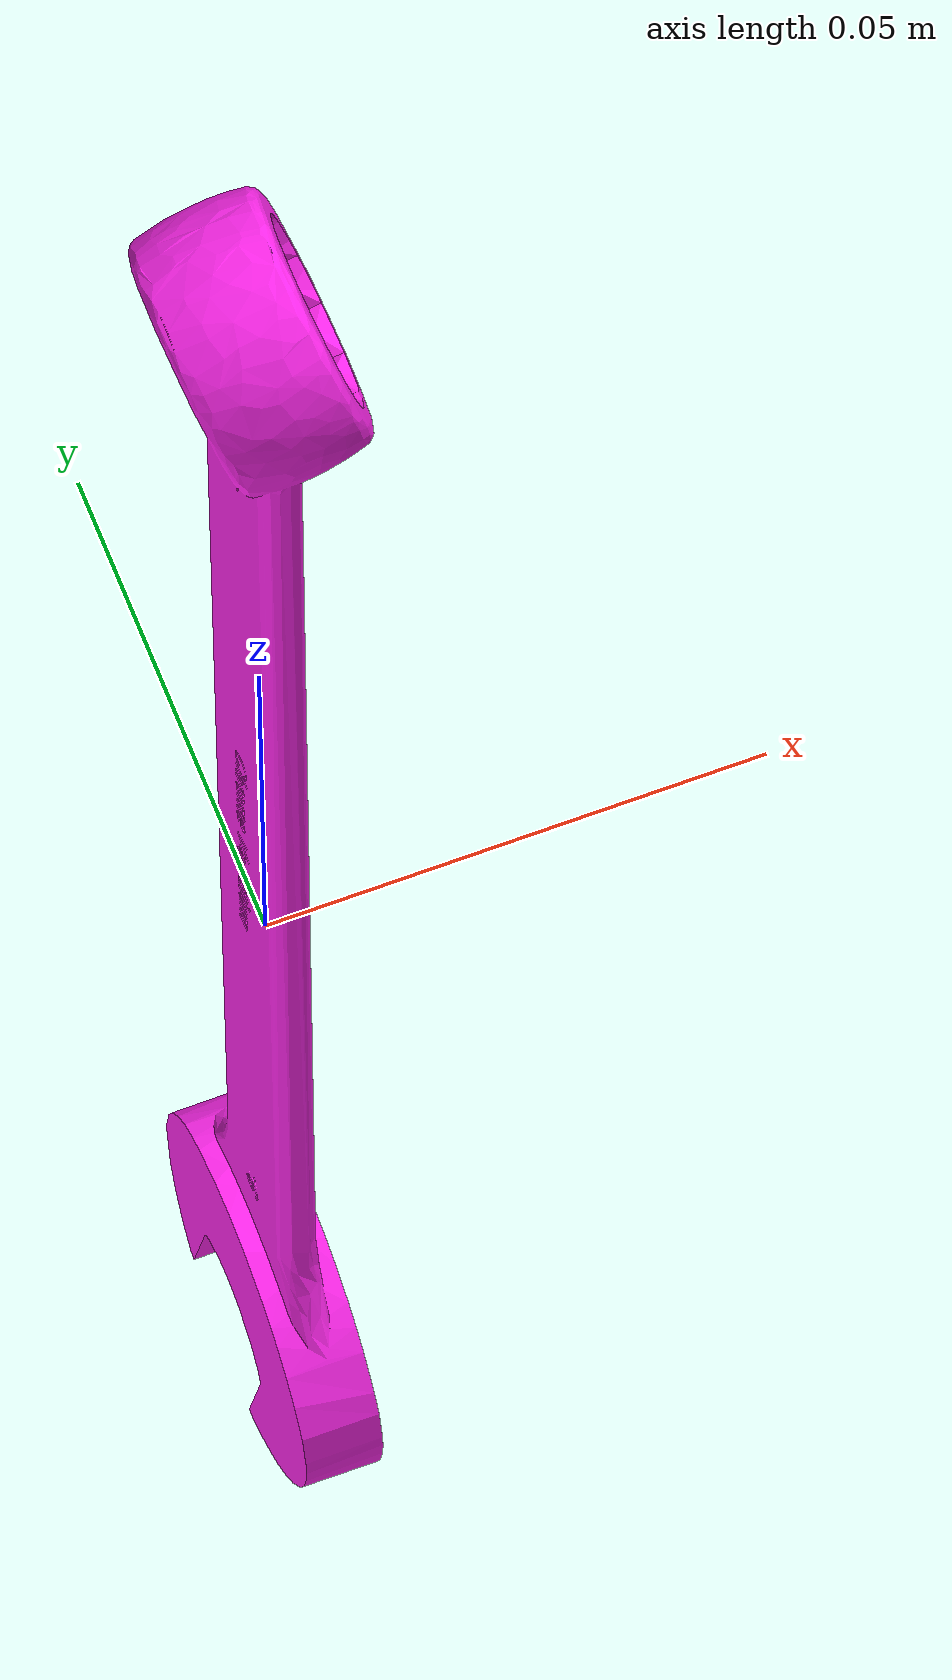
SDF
<?xml version="1.0"?>
<sdf version="1.7">
  <model name="combination_wrench_16mm_bright">
    <pose>0 0 0 0 0 0</pose>
    <static>false</static>
    <link name="link">
      <!-- link frame = tool CoM; Z = long axis (+ toward tool end), X = forward, Y = Z x X -->
      <inertial>
        <pose>0 0 0 0 0 0</pose>
        <mass>0.156410</mass>
        <inertia>
          <ixx>8.454343e-04</ixx>
          <ixy>3.731215e-21</ixy>
          <ixz>5.685154e-22</ixz>
          <iyy>8.369757e-04</iyy>
          <iyz>-1.895453e-21</iyz>
          <izz>9.939290e-06</izz>
        </inertia>
      </inertial>
      <collision name="collision">
        <geometry>
          <mesh>
            <uri>model://combination_wrench_16mm/meshes/combination_wrench_16mm.dae</uri>
          </mesh>
        </geometry>
      </collision>
      <visual name="visual">
        <geometry>
          <mesh>
            <uri>model://combination_wrench_16mm/meshes/combination_wrench_16mm.dae</uri>
          </mesh>
        </geometry>
        <material>
          <ambient>0.450 0.068 0.417 1.0</ambient>
          <diffuse>1.000 0.150 0.928 1.0</diffuse>
          <specular>0.85 0.85 0.85 1.0</specular>
          <emissive>0 0 0 1.0</emissive>
        </material>
      </visual>
    </link>
  </model>
</sdf>
